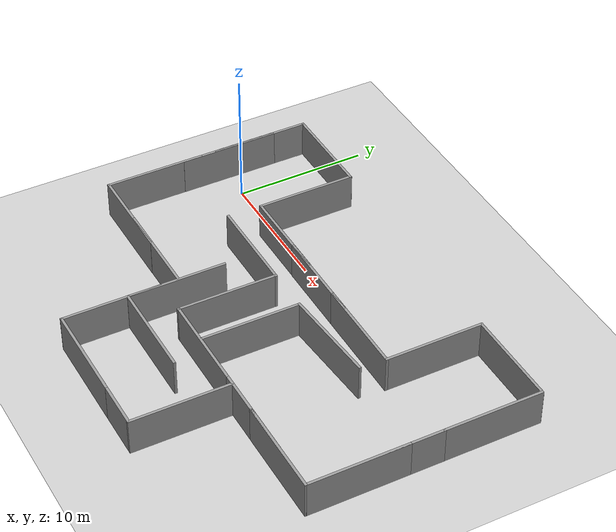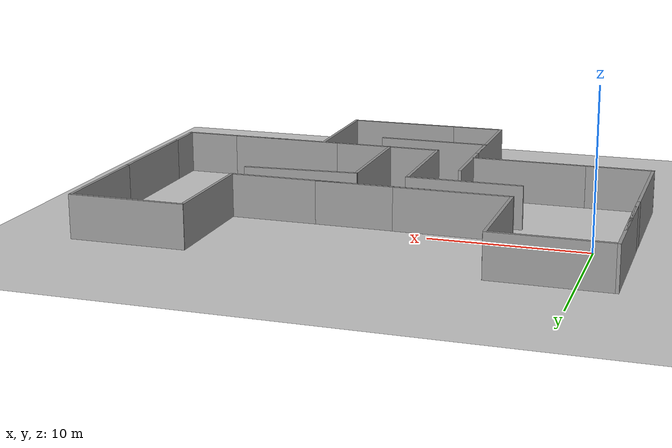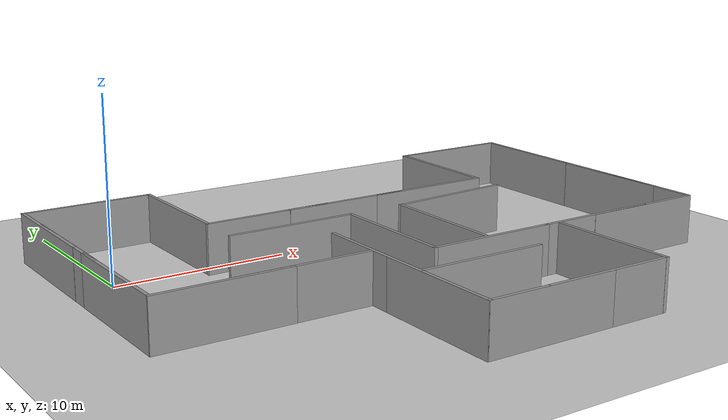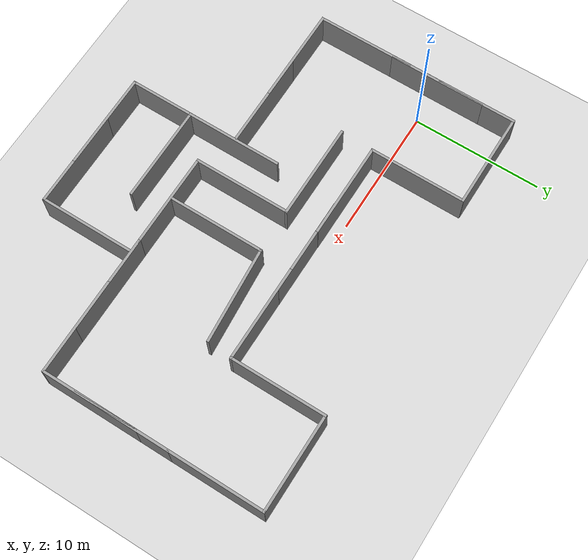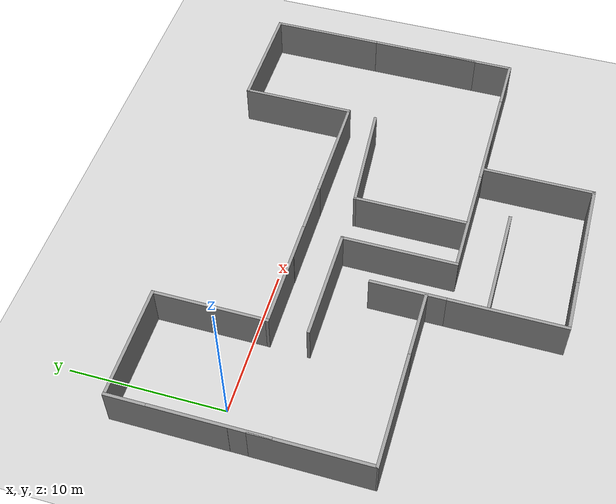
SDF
<sdf version="1.6">
 <world name="default">
  <light name="sun" type="directional">
   <pose>0 0 10 0 -0 0</pose>
   <diffuse>0.8 0.8 0.8 1</diffuse>
   <specular>0.2 0.2 0.2 1</specular>
   <attenuation>
    <range>1000</range>
    <constant>0.9</constant>
    <linear>0.01</linear>
    <quadratic>0.001</quadratic>
   </attenuation>
   <direction>-0.5 0.1 -0.9</direction>
  </light>
  <model name="ground_plane">
   <static>1</static>
   <link name="link">
    <collision name="collision">
     <geometry><plane><normal>0 0 1</normal><size>100 100</size></plane></geometry>
     <surface><friction><ode><mu>100</mu><mu2>50</mu2></ode></friction></surface>
    </collision>
    <visual name="visual">
     <cast_shadows>0</cast_shadows>
     <geometry><plane><normal>0 0 1</normal><size>100 100</size></plane></geometry>
     <material>
      <script><uri>file://media/materials/scripts/gazebo.material</uri><name>Gazebo/Grey</name></script>
     </material>
    </visual>
   </link>
  </model>
  <gravity>0 0 -9.8</gravity>
  <magnetic_field>6e-06 2.3e-05 -4.2e-05</magnetic_field>
  <atmosphere type="adiabatic"/>
  <physics name="default_physics" default="0" type="ode">
   <max_step_size>0.001</max_step_size>
   <real_time_factor>1</real_time_factor>
   <real_time_update_rate>1000</real_time_update_rate>
  </physics>
  <scene><ambient>0.4 0.4 0.4 1</ambient><background>0.7 0.7 0.7 1</background><shadows>1</shadows></scene>
  <spherical_coordinates>
   <surface_model>EARTH_WGS84</surface_model>
   <latitude_deg>0</latitude_deg>
   <longitude_deg>0</longitude_deg>
   <elevation>0</elevation>
   <heading_deg>0</heading_deg>
  </spherical_coordinates>
  <model name="grey_wall">
   <static>1</static>
   <link name="link">
    <pose>0 0 1.4 0 -0 0</pose>
    <collision name="collision"><geometry><box><size>7.5 0.2 2.8</size></box></geometry></collision>
    <visual name="visual">
     <cast_shadows>0</cast_shadows>
     <geometry><box><size>7.5 0.2 2.8</size></box></geometry>
     <material>
      <script>
       <uri>model://grey_wall/materials/scripts</uri>
       <uri>model://grey_wall/materials/textures</uri>
       <name>vrc/grey_wall</name>
      </script>
     </material>
    </visual>
   </link>
   <pose>1.40551 6.37149 0 0 -0 0</pose>
  </model>
  <model name="grey_wall_0">
   <static>1</static>
   <link name="link">
    <pose>0 0 1.4 0 -0 0</pose>
    <collision name="collision"><geometry><box><size>7.5 0.2 2.8</size></box></geometry></collision>
    <visual name="visual">
     <cast_shadows>0</cast_shadows>
     <geometry><box><size>7.5 0.2 2.8</size></box></geometry>
     <material>
      <script>
       <uri>model://grey_wall/materials/scripts</uri>
       <uri>model://grey_wall/materials/textures</uri>
       <name>vrc/grey_wall</name>
      </script>
     </material>
    </visual>
   </link>
   <pose>8.62189 -3.53351 0 0 -0 0</pose>
  </model>
  <model name="grey_wall_0_clone">
   <static>1</static>
   <link name="link">
    <pose>0 0 1.4 0 -0 0</pose>
    <collision name="collision"><geometry><box><size>7.5 0.2 2.8</size></box></geometry></collision>
    <visual name="visual">
     <cast_shadows>0</cast_shadows>
     <geometry><box><size>7.5 0.2 2.8</size></box></geometry>
     <material>
      <script>
       <uri>model://grey_wall/materials/scripts</uri>
       <uri>model://grey_wall/materials/textures</uri>
       <name>vrc/grey_wall</name>
      </script>
     </material>
    </visual>
   </link>
   <pose>19.4528 -0.975786 0 0 -0 0</pose>
  </model>
  <model name="grey_wall_0_clone_0">
   <static>1</static>
   <link name="link">
    <pose>0 0 1.4 0 -0 0</pose>
    <collision name="collision"><geometry><box><size>7.5 0.2 2.8</size></box></geometry></collision>
    <visual name="visual">
     <cast_shadows>0</cast_shadows>
     <geometry><box><size>7.5 0.2 2.8</size></box></geometry>
     <material>
      <script>
       <uri>model://grey_wall/materials/scripts</uri>
       <uri>model://grey_wall/materials/textures</uri>
       <name>vrc/grey_wall</name>
      </script>
     </material>
    </visual>
   </link>
   <pose>26.7858 6.34842 0 0 -0 0</pose>
  </model>
  <model name="grey_wall_0_clone_1">
   <static>1</static>
   <link name="link">
    <pose>0 0 1.4 0 -0 0</pose>
    <collision name="collision"><geometry><box><size>7.5 0.2 2.8</size></box></geometry></collision>
    <visual name="visual">
     <cast_shadows>0</cast_shadows>
     <geometry><box><size>7.5 0.2 2.8</size></box></geometry>
     <material>
      <script>
       <uri>model://grey_wall/materials/scripts</uri>
       <uri>model://grey_wall/materials/textures</uri>
       <name>vrc/grey_wall</name>
      </script>
     </material>
    </visual>
   </link>
   <pose>16.6785 -18.265 0 0 -0 0</pose>
  </model>
  <model name="grey_wall_0_clone_2">
   <static>1</static>
   <link name="link">
    <pose>0 0 1.4 0 -0 0</pose>
    <collision name="collision"><geometry><box><size>7.5 0.2 2.8</size></box></geometry></collision>
    <visual name="visual">
     <cast_shadows>0</cast_shadows>
     <geometry><box><size>7.5 0.2 2.8</size></box></geometry>
     <material>
      <script>
       <uri>model://grey_wall/materials/scripts</uri>
       <uri>model://grey_wall/materials/textures</uri>
       <name>vrc/grey_wall</name>
      </script>
     </material>
    </visual>
   </link>
   <pose>5.72727 -9.6042 0 0 -0 0</pose>
  </model>
  <model name="grey_wall_0_clone_3">
   <static>1</static>
   <link name="link">
    <pose>0 0 1.4 0 -0 0</pose>
    <collision name="collision"><geometry><box><size>7.5 0.2 2.8</size></box></geometry></collision>
    <visual name="visual">
     <cast_shadows>0</cast_shadows>
     <geometry><box><size>7.5 0.2 2.8</size></box></geometry>
     <material>
      <script>
       <uri>model://grey_wall/materials/scripts</uri>
       <uri>model://grey_wall/materials/textures</uri>
       <name>vrc/grey_wall</name>
      </script>
     </material>
    </visual>
   </link>
   <pose>13.1413 -13.3999 0 0 -0 0</pose>
  </model>
  <model name="grey_wall_0_clone_4">
   <static>1</static>
   <link name="link">
    <pose>0 0 1.4 0 -0 0</pose>
    <collision name="collision"><geometry><box><size>7.5 0.2 2.8</size></box></geometry></collision>
    <visual name="visual">
     <cast_shadows>0</cast_shadows>
     <geometry><box><size>7.5 0.2 2.8</size></box></geometry>
     <material>
      <script>
       <uri>model://grey_wall/materials/scripts</uri>
       <uri>model://grey_wall/materials/textures</uri>
       <name>vrc/grey_wall</name>
      </script>
     </material>
    </visual>
   </link>
   <pose>1.3488 -9.61246 0 0 -0 0</pose>
  </model>
  <model name="grey_wall_0_clone_5">
   <static>1</static>
   <link name="link">
    <pose>0 0 1.4 0 -0 0</pose>
    <collision name="collision"><geometry><box><size>7.5 0.2 2.8</size></box></geometry></collision>
    <visual name="visual">
     <cast_shadows>0</cast_shadows>
     <geometry><box><size>7.5 0.2 2.8</size></box></geometry>
     <material>
      <script>
       <uri>model://grey_wall/materials/scripts</uri>
       <uri>model://grey_wall/materials/textures</uri>
       <name>vrc/grey_wall</name>
      </script>
     </material>
    </visual>
   </link>
   <pose>-2.26973 0.113719 0 0 0 -1.57327</pose>
  </model>
  <model name="grey_wall_0_clone_6">
   <static>1</static>
   <link name="link">
    <pose>0 0 1.4 0 -0 0</pose>
    <collision name="collision"><geometry><box><size>7.5 0.2 2.8</size></box></geometry></collision>
    <visual name="visual">
     <cast_shadows>0</cast_shadows>
     <geometry><box><size>7.5 0.2 2.8</size></box></geometry>
     <material>
      <script>
       <uri>model://grey_wall/materials/scripts</uri>
       <uri>model://grey_wall/materials/textures</uri>
       <name>vrc/grey_wall</name>
      </script>
     </material>
    </visual>
   </link>
   <pose>13.7149 -0.971329 0 0 -0 0</pose>
  </model>
  <model name="grey_wall_0_clone_7">
   <static>1</static>
   <link name="link">
    <pose>0 0 1.4 0 -0 0</pose>
    <collision name="collision"><geometry><box><size>7.5 0.2 2.8</size></box></geometry></collision>
    <visual name="visual">
     <cast_shadows>0</cast_shadows>
     <geometry><box><size>7.5 0.2 2.8</size></box></geometry>
     <material>
      <script>
       <uri>model://grey_wall/materials/scripts</uri>
       <uri>model://grey_wall/materials/textures</uri>
       <name>vrc/grey_wall</name>
      </script>
     </material>
    </visual>
   </link>
   <pose>26.7391 -10.9079 0 0 -0 0</pose>
  </model>
  <model name="grey_wall_0_clone_8">
   <static>1</static>
   <link name="link">
    <pose>0 0 1.4 0 -0 0</pose>
    <collision name="collision"><geometry><box><size>7.5 0.2 2.8</size></box></geometry></collision>
    <visual name="visual">
     <cast_shadows>0</cast_shadows>
     <geometry><box><size>7.5 0.2 2.8</size></box></geometry>
     <material>
      <script>
       <uri>model://grey_wall/materials/scripts</uri>
       <uri>model://grey_wall/materials/textures</uri>
       <name>vrc/grey_wall</name>
      </script>
     </material>
    </visual>
   </link>
   <pose>8.69545 -0.954139 0 0 -0 0</pose>
  </model>
  <model name="grey_wall_0_clone_9">
   <static>1</static>
   <link name="link">
    <pose>0 0 1.4 0 -0 0</pose>
    <collision name="collision"><geometry><box><size>7.5 0.2 2.8</size></box></geometry></collision>
    <visual name="visual">
     <cast_shadows>0</cast_shadows>
     <geometry><box><size>7.5 0.2 2.8</size></box></geometry>
     <material>
      <script>
       <uri>model://grey_wall/materials/scripts</uri>
       <uri>model://grey_wall/materials/textures</uri>
       <name>vrc/grey_wall</name>
      </script>
     </material>
    </visual>
   </link>
   <pose>15.9117 -10.903 0 0 -0 0</pose>
  </model>
  <model name="grey_wall_0_clone_10">
   <static>1</static>
   <link name="link">
    <pose>0 0 1.4 0 -0 0</pose>
    <collision name="collision"><geometry><box><size>7.5 0.2 2.8</size></box></geometry></collision>
    <visual name="visual">
     <cast_shadows>0</cast_shadows>
     <geometry><box><size>7.5 0.2 2.8</size></box></geometry>
     <material>
      <script>
       <uri>model://grey_wall/materials/scripts</uri>
       <uri>model://grey_wall/materials/textures</uri>
       <name>vrc/grey_wall</name>
      </script>
     </material>
    </visual>
   </link>
   <pose>19.2703 -3.18878 0 0 -0 0.076491</pose>
  </model>
  <model name="grey_wall_0_clone_11">
   <static>1</static>
   <link name="link">
    <pose>0 0 1.4 0 -0 0</pose>
    <collision name="collision"><geometry><box><size>7.5 0.2 2.8</size></box></geometry></collision>
    <visual name="visual">
     <cast_shadows>0</cast_shadows>
     <geometry><box><size>7.5 0.2 2.8</size></box></geometry>
     <material>
      <script>
       <uri>model://grey_wall/materials/scripts</uri>
       <uri>model://grey_wall/materials/textures</uri>
       <name>vrc/grey_wall</name>
      </script>
     </material>
    </visual>
   </link>
   <pose>23.1445 -10.9011 0 0 -0 0</pose>
  </model>
  <model name="grey_wall_0_clone_5_clone">
   <static>1</static>
   <link name="link">
    <pose>0 0 1.4 0 -0 0</pose>
    <collision name="collision"><geometry><box><size>7.5 0.2 2.8</size></box></geometry></collision>
    <visual name="visual">
     <cast_shadows>0</cast_shadows>
     <geometry><box><size>7.5 0.2 2.8</size></box></geometry>
     <material>
      <script>
       <uri>model://grey_wall/materials/scripts</uri>
       <uri>model://grey_wall/materials/textures</uri>
       <name>vrc/grey_wall</name>
      </script>
     </material>
    </visual>
   </link>
   <pose>5.05606 2.70407 0 0 0 -1.57327</pose>
  </model>
  <model name="grey_wall_0_clone_5_clone_0">
   <static>1</static>
   <link name="link">
    <pose>0 0 1.4 0 -0 0</pose>
    <collision name="collision"><geometry><box><size>7.5 0.2 2.8</size></box></geometry></collision>
    <visual name="visual">
     <cast_shadows>0</cast_shadows>
     <geometry><box><size>7.5 0.2 2.8</size></box></geometry>
     <material>
      <script>
       <uri>model://grey_wall/materials/scripts</uri>
       <uri>model://grey_wall/materials/textures</uri>
       <name>vrc/grey_wall</name>
      </script>
     </material>
    </visual>
   </link>
   <pose>-2.26973 2.72192 0 0 0 -1.57327</pose>
  </model>
  <model name="grey_wall_0_clone_5_clone_1">
   <static>1</static>
   <link name="link">
    <pose>0 0 1.4 0 -0 0</pose>
    <collision name="collision"><geometry><box><size>7.5 0.2 2.8</size></box></geometry></collision>
    <visual name="visual">
     <cast_shadows>0</cast_shadows>
     <geometry><box><size>7.5 0.2 2.8</size></box></geometry>
     <material>
      <script>
       <uri>model://grey_wall/materials/scripts</uri>
       <uri>model://grey_wall/materials/textures</uri>
       <name>vrc/grey_wall</name>
      </script>
     </material>
    </visual>
   </link>
   <pose>30.4144 -4.65349 0 0 0 -1.57327</pose>
  </model>
  <model name="grey_wall_0_clone_5_clone_2">
   <static>1</static>
   <link name="link">
    <pose>0 0 1.4 0 -0 0</pose>
    <collision name="collision"><geometry><box><size>7.5 0.2 2.8</size></box></geometry></collision>
    <visual name="visual">
     <cast_shadows>0</cast_shadows>
     <geometry><box><size>7.5 0.2 2.8</size></box></geometry>
     <material>
      <script>
       <uri>model://grey_wall/materials/scripts</uri>
       <uri>model://grey_wall/materials/textures</uri>
       <name>vrc/grey_wall</name>
      </script>
     </material>
    </visual>
   </link>
   <pose>30.429 2.68242 0 0 0 -1.57327</pose>
  </model>
  <model name="grey_wall_0_clone_5_clone_3">
   <static>1</static>
   <link name="link">
    <pose>0 0 1.4 0 -0 0</pose>
    <collision name="collision"><geometry><box><size>7.5 0.2 2.8</size></box></geometry></collision>
    <visual name="visual">
     <cast_shadows>0</cast_shadows>
     <geometry><box><size>7.5 0.2 2.8</size></box></geometry>
     <material>
      <script>
       <uri>model://grey_wall/materials/scripts</uri>
       <uri>model://grey_wall/materials/textures</uri>
       <name>vrc/grey_wall</name>
      </script>
     </material>
    </visual>
   </link>
   <pose>12.2546 -7.25538 0 0 0 -1.57327</pose>
  </model>
  <model name="grey_wall_0_clone_5_clone_4">
   <static>1</static>
   <link name="link">
    <pose>0 0 1.4 0 -0 0</pose>
    <collision name="collision"><geometry><box><size>7.5 0.2 2.8</size></box></geometry></collision>
    <visual name="visual">
     <cast_shadows>0</cast_shadows>
     <geometry><box><size>7.5 0.2 2.8</size></box></geometry>
     <material>
      <script>
       <uri>model://grey_wall/materials/scripts</uri>
       <uri>model://grey_wall/materials/textures</uri>
       <name>vrc/grey_wall</name>
      </script>
     </material>
    </visual>
   </link>
   <pose>15.6277 -7.12355 0 0 0 -1.57327</pose>
  </model>
  <model name="grey_wall_0_clone_5_clone_2_clone">
   <static>1</static>
   <link name="link">
    <pose>0 0 1.4 0 -0 0</pose>
    <collision name="collision"><geometry><box><size>7.5 0.2 2.8</size></box></geometry></collision>
    <visual name="visual">
     <cast_shadows>0</cast_shadows>
     <geometry><box><size>7.5 0.2 2.8</size></box></geometry>
     <material>
      <script>
       <uri>model://grey_wall/materials/scripts</uri>
       <uri>model://grey_wall/materials/textures</uri>
       <name>vrc/grey_wall</name>
      </script>
     </material>
    </visual>
   </link>
   <pose>23.1089 2.69179 0 0 0 -1.57327</pose>
  </model>
  <model name="grey_wall_0_clone_5_clone_2_clone_0">
   <static>1</static>
   <link name="link">
    <pose>0 0 1.4 0 -0 0</pose>
    <collision name="collision"><geometry><box><size>7.5 0.2 2.8</size></box></geometry></collision>
    <visual name="visual">
     <cast_shadows>0</cast_shadows>
     <geometry><box><size>7.5 0.2 2.8</size></box></geometry>
     <material>
      <script>
       <uri>model://grey_wall/materials/scripts</uri>
       <uri>model://grey_wall/materials/textures</uri>
       <name>vrc/grey_wall</name>
      </script>
     </material>
    </visual>
   </link>
   <pose>20.3846 -14.6194 0 0 0 -1.57327</pose>
  </model>
  <model name="grey_wall_0_clone_5_clone_2_clone_2">
   <static>1</static>
   <link name="link">
    <pose>0 0 1.4 0 -0 0</pose>
    <collision name="collision"><geometry><box><size>7.5 0.2 2.8</size></box></geometry></collision>
    <visual name="visual">
     <cast_shadows>0</cast_shadows>
     <geometry><box><size>7.5 0.2 2.8</size></box></geometry>
     <material>
      <script>
       <uri>model://grey_wall/materials/scripts</uri>
       <uri>model://grey_wall/materials/textures</uri>
       <name>vrc/grey_wall</name>
      </script>
     </material>
    </visual>
   </link>
   <pose>9.47934 -14.6107 0 0 0 -1.57327</pose>
  </model>
  <model name="grey_wall_0_clone_5_clone_2_clone_3">
   <static>1</static>
   <link name="link">
    <pose>0 0 1.4 0 -0 0</pose>
    <collision name="collision"><geometry><box><size>7.5 0.2 2.8</size></box></geometry></collision>
    <visual name="visual">
     <cast_shadows>0</cast_shadows>
     <geometry><box><size>7.5 0.2 2.8</size></box></geometry>
     <material>
      <script>
       <uri>model://grey_wall/materials/scripts</uri>
       <uri>model://grey_wall/materials/textures</uri>
       <name>vrc/grey_wall</name>
      </script>
     </material>
    </visual>
   </link>
   <pose>-2.29242 -5.87108 0 0 0 -1.57327</pose>
  </model>
  <model name="grey_wall_0_clone_5_clone_2_clone_4">
   <static>1</static>
   <link name="link">
    <pose>0 0 1.4 0 -0 0</pose>
    <collision name="collision"><geometry><box><size>7.5 0.2 2.8</size></box></geometry></collision>
    <visual name="visual">
     <cast_shadows>0</cast_shadows>
     <geometry><box><size>7.5 0.2 2.8</size></box></geometry>
     <material>
      <script>
       <uri>model://grey_wall/materials/scripts</uri>
       <uri>model://grey_wall/materials/textures</uri>
       <name>vrc/grey_wall</name>
      </script>
     </material>
    </visual>
   </link>
   <pose>30.4088 -7.14473 0 0 0 -1.57327</pose>
  </model>
  <model name="grey_wall_0_clone_5_clone_2_clone_5">
   <static>1</static>
   <link name="link">
    <pose>0 0 1.4 0 -0 0</pose>
    <collision name="collision"><geometry><box><size>7.5 0.2 2.8</size></box></geometry></collision>
    <visual name="visual">
     <cast_shadows>0</cast_shadows>
     <geometry><box><size>7.5 0.2 2.8</size></box></geometry>
     <material>
      <script>
       <uri>model://grey_wall/materials/scripts</uri>
       <uri>model://grey_wall/materials/textures</uri>
       <name>vrc/grey_wall</name>
      </script>
     </material>
    </visual>
   </link>
   <pose>9.49351 -9.75281 0 0 0 -1.57327</pose>
  </model>
  <model name="grey_wall_0_clone_1_clone">
   <static>1</static>
   <link name="link">
    <pose>0 0 1.4 0 -0 0</pose>
    <collision name="collision"><geometry><box><size>7.5 0.2 2.8</size></box></geometry></collision>
    <visual name="visual">
     <cast_shadows>0</cast_shadows>
     <geometry><box><size>7.5 0.2 2.8</size></box></geometry>
     <material>
      <script>
       <uri>model://grey_wall/materials/scripts</uri>
       <uri>model://grey_wall/materials/textures</uri>
       <name>vrc/grey_wall</name>
      </script>
     </material>
    </visual>
   </link>
   <pose>13.1643 -18.2661 0 0 -0 0</pose>
  </model>
 </world>
</sdf>
